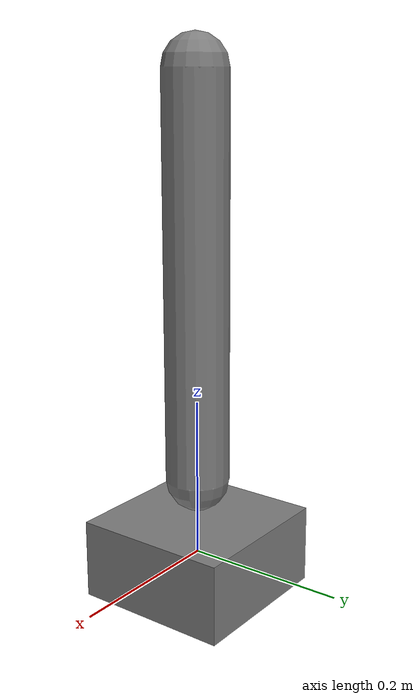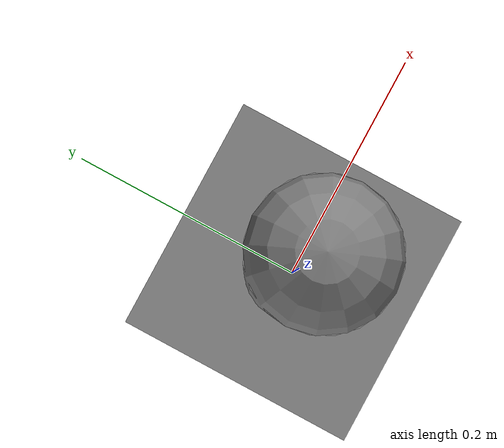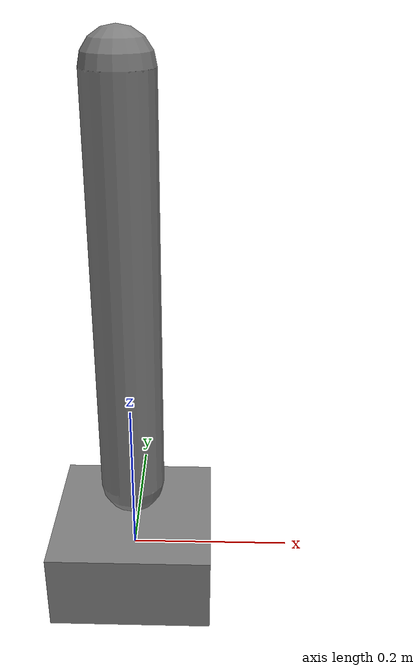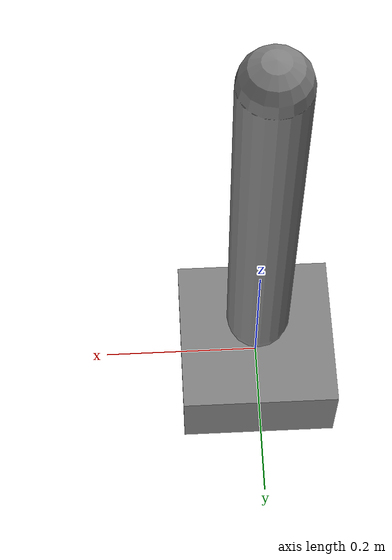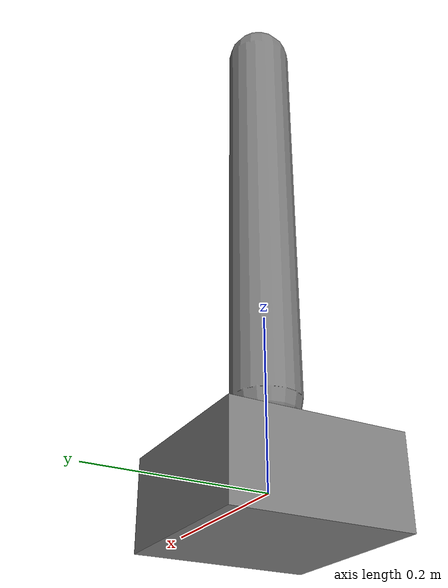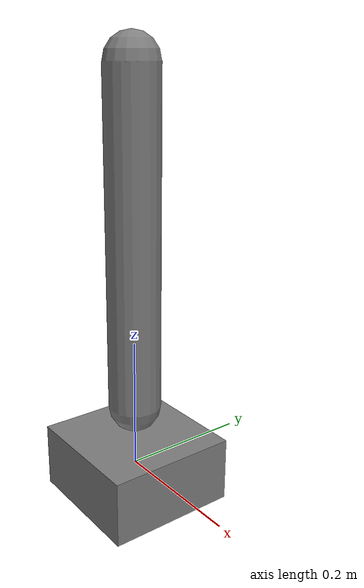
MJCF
<mujoco model="hinge_motor"><compiler angle="radian"/><option timestep="0.002"/><worldbody><body name="base"><freejoint/><geom type="box" size="0.1 0.1 0.05" mass="2"/><body name="arm" pos="0 0 0.1"><joint name="shoulder" type="hinge" axis="0 1 0" range="-1.57 1.57" damping="0.1" frictionloss="0.02"/><geom type="capsule" fromto="0 0 0 0 0 0.5" size="0.04" mass="0.5"/></body></body></worldbody><actuator><motor name="shoulder_motor" joint="shoulder" gear="100" ctrllimited="true" ctrlrange="-1 1"/></actuator></mujoco>
